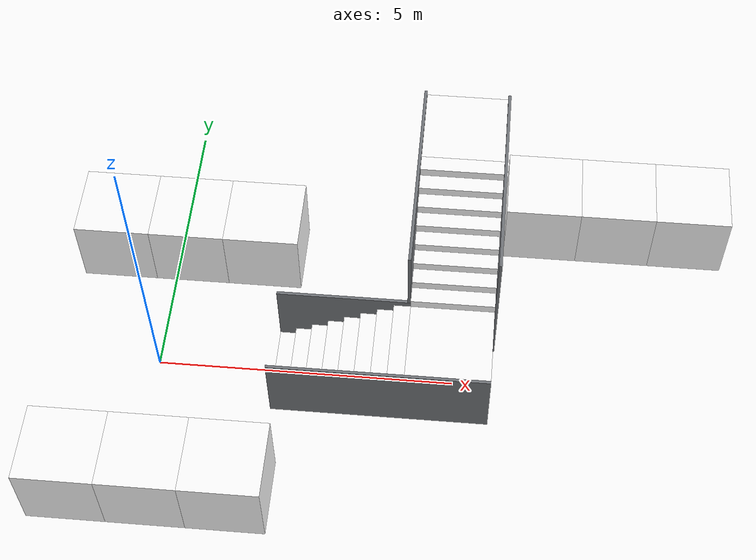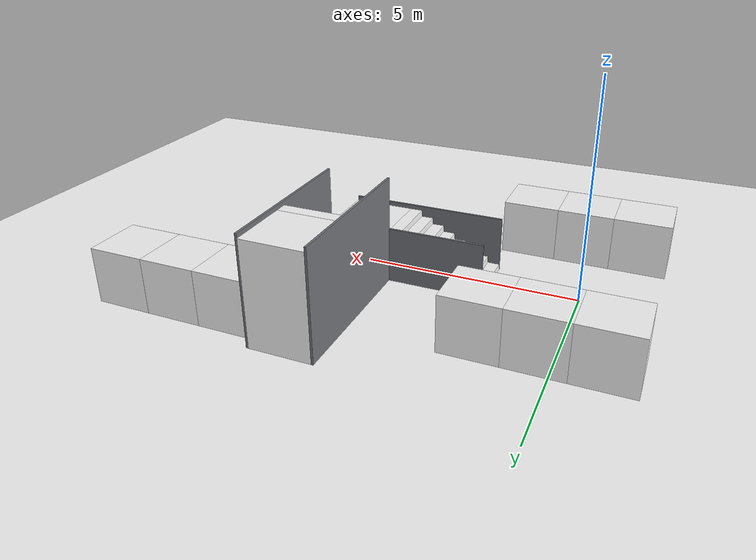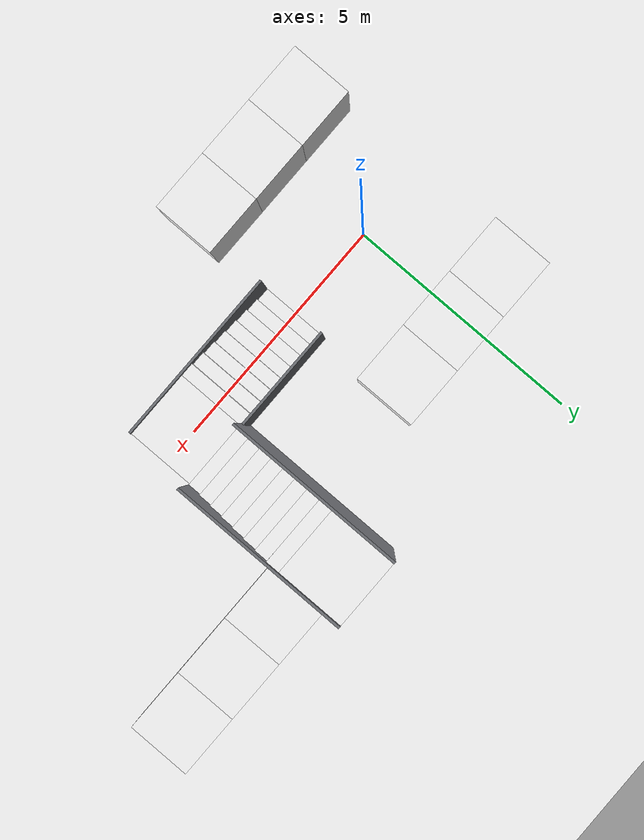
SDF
<?xml version="1.0" ?>
<sdf version="1.9">
  <world name="stairs">
    <physics name="1ms" type="ignored">
      <max_step_size>0.001</max_step_size>
      <real_time_factor>1</real_time_factor>
    </physics>
    <plugin filename="gz-sim-physics-system" name="gz::sim::systems::Physics"/>
    <plugin filename="gz-sim-user-commands-system" name="gz::sim::systems::UserCommands"/>
    <plugin filename="gz-sim-scene-broadcaster-system" name="gz::sim::systems::SceneBroadcaster"/>
    <plugin filename="gz-sim-imu-system" name="gz::sim::systems::Imu"/>
    <plugin filename="gz-sim-sensors-system" name="gz::sim::systems::Sensors">
      <render_engine>ogre2</render_engine>
    </plugin>

    <scene>
      <ambient>1 1 1 1</ambient>
      <background>0.3 0.7 0.9 1</background>
      <shadows>0</shadows>
      <grid>1</grid>
    </scene>

    <light name="sun" type="directional">
      <pose>0 0 10 0 0 0</pose>
      <cast_shadows>false</cast_shadows>
      <diffuse>1 1 1 1</diffuse>
      <specular>0.1 0.1 0.1 1</specular>
      <direction>-0.3 0.3 -1</direction>
    </light>

    <!-- visual-only ceiling: same rationale as yard (open sky kills stereo) -->
    <model name="sky_shell">
      <static>1</static>
      <link name="link">
        <visual name="ceiling">
          <pose>0 0 12 0 0 0</pose>
          <geometry><plane><normal>0 0 -1</normal><size>220 160</size></plane></geometry>
          <material>
            <ambient>0.6 0.6 0.6 1</ambient>
            <diffuse>0.6 0.6 0.6 1</diffuse>
          </material>
        </visual>
      </link>
    </model>

    <model name="ground_plane">
      <static>1</static>
      <pose>0 0 0.002 0 0 0</pose>
      <link name="link">
        <collision name="collision">
          <geometry><plane><normal>0 0 1</normal><size>100 100</size></plane></geometry>
          <surface>
            <friction><ode/></friction>
            <bounce/>
            <contact/>
          </surface>
        </collision>
        <visual name="floor_visual">
          <pose>0 0 -0.011 0 0 0</pose>
          <geometry><box><size>40 40 0.02</size></box></geometry>
          <material>
            <diffuse>1 1 1 1</diffuse>
            <specular>0.05 0.05 0.05 1</specular>
            <pbr>
              <metal>
                <albedo_map>model://textures/FLOOR_Albedo.png</albedo_map>
                <roughness>0.95</roughness>
                <metalness>0.0</metalness>
              </metal>
            </pbr>
          </material>
        </visual>
      </link>
    </model>

    <model name="stairs_switchback">
      <static>1</static>
      <pose>0 0 0 0 0 0</pose>
      <link name="link">
      <collision name="col_f1_s0">
        <pose>2.1400 0.0000 0.0750 0 0 0</pose>
        <geometry><box><size>0.2800 1.4000 0.1500</size></box></geometry>
        <surface><friction><ode><mu>1.2</mu><mu2>1.2</mu2></ode></friction></surface>
      </collision>
      <visual name="vis_f1_s0">
        <pose>2.1400 0.0000 0.0750 0 0 0</pose>
        <geometry><box><size>0.2800 1.4000 0.1500</size></box></geometry><material><diffuse>1 1 1 1</diffuse><specular>0.05 0.05 0.05 1</specular><pbr><metal><albedo_map>model://textures/STAIRS_Albedo.png</albedo_map><roughness>0.95</roughness><metalness>0.0</metalness></metal></pbr></material>
      </visual>
      <collision name="col_f1_s1">
        <pose>2.4200 0.0000 0.1500 0 0 0</pose>
        <geometry><box><size>0.2800 1.4000 0.3000</size></box></geometry>
        <surface><friction><ode><mu>1.2</mu><mu2>1.2</mu2></ode></friction></surface>
      </collision>
      <visual name="vis_f1_s1">
        <pose>2.4200 0.0000 0.1500 0 0 0</pose>
        <geometry><box><size>0.2800 1.4000 0.3000</size></box></geometry><material><diffuse>1 1 1 1</diffuse><specular>0.05 0.05 0.05 1</specular><pbr><metal><albedo_map>model://textures/STAIRS_Albedo.png</albedo_map><roughness>0.95</roughness><metalness>0.0</metalness></metal></pbr></material>
      </visual>
      <collision name="col_f1_s2">
        <pose>2.7000 0.0000 0.2250 0 0 0</pose>
        <geometry><box><size>0.2800 1.4000 0.4500</size></box></geometry>
        <surface><friction><ode><mu>1.2</mu><mu2>1.2</mu2></ode></friction></surface>
      </collision>
      <visual name="vis_f1_s2">
        <pose>2.7000 0.0000 0.2250 0 0 0</pose>
        <geometry><box><size>0.2800 1.4000 0.4500</size></box></geometry><material><diffuse>1 1 1 1</diffuse><specular>0.05 0.05 0.05 1</specular><pbr><metal><albedo_map>model://textures/STAIRS_Albedo.png</albedo_map><roughness>0.95</roughness><metalness>0.0</metalness></metal></pbr></material>
      </visual>
      <collision name="col_f1_s3">
        <pose>2.9800 0.0000 0.3000 0 0 0</pose>
        <geometry><box><size>0.2800 1.4000 0.6000</size></box></geometry>
        <surface><friction><ode><mu>1.2</mu><mu2>1.2</mu2></ode></friction></surface>
      </collision>
      <visual name="vis_f1_s3">
        <pose>2.9800 0.0000 0.3000 0 0 0</pose>
        <geometry><box><size>0.2800 1.4000 0.6000</size></box></geometry><material><diffuse>1 1 1 1</diffuse><specular>0.05 0.05 0.05 1</specular><pbr><metal><albedo_map>model://textures/STAIRS_Albedo.png</albedo_map><roughness>0.95</roughness><metalness>0.0</metalness></metal></pbr></material>
      </visual>
      <collision name="col_f1_s4">
        <pose>3.2600 0.0000 0.3750 0 0 0</pose>
        <geometry><box><size>0.2800 1.4000 0.7500</size></box></geometry>
        <surface><friction><ode><mu>1.2</mu><mu2>1.2</mu2></ode></friction></surface>
      </collision>
      <visual name="vis_f1_s4">
        <pose>3.2600 0.0000 0.3750 0 0 0</pose>
        <geometry><box><size>0.2800 1.4000 0.7500</size></box></geometry><material><diffuse>1 1 1 1</diffuse><specular>0.05 0.05 0.05 1</specular><pbr><metal><albedo_map>model://textures/STAIRS_Albedo.png</albedo_map><roughness>0.95</roughness><metalness>0.0</metalness></metal></pbr></material>
      </visual>
      <collision name="col_f1_s5">
        <pose>3.5400 0.0000 0.4500 0 0 0</pose>
        <geometry><box><size>0.2800 1.4000 0.9000</size></box></geometry>
        <surface><friction><ode><mu>1.2</mu><mu2>1.2</mu2></ode></friction></surface>
      </collision>
      <visual name="vis_f1_s5">
        <pose>3.5400 0.0000 0.4500 0 0 0</pose>
        <geometry><box><size>0.2800 1.4000 0.9000</size></box></geometry><material><diffuse>1 1 1 1</diffuse><specular>0.05 0.05 0.05 1</specular><pbr><metal><albedo_map>model://textures/STAIRS_Albedo.png</albedo_map><roughness>0.95</roughness><metalness>0.0</metalness></metal></pbr></material>
      </visual>
      <collision name="col_f1_s6">
        <pose>3.8200 0.0000 0.5250 0 0 0</pose>
        <geometry><box><size>0.2800 1.4000 1.0500</size></box></geometry>
        <surface><friction><ode><mu>1.2</mu><mu2>1.2</mu2></ode></friction></surface>
      </collision>
      <visual name="vis_f1_s6">
        <pose>3.8200 0.0000 0.5250 0 0 0</pose>
        <geometry><box><size>0.2800 1.4000 1.0500</size></box></geometry><material><diffuse>1 1 1 1</diffuse><specular>0.05 0.05 0.05 1</specular><pbr><metal><albedo_map>model://textures/STAIRS_Albedo.png</albedo_map><roughness>0.95</roughness><metalness>0.0</metalness></metal></pbr></material>
      </visual>
      <collision name="col_f1_s7">
        <pose>4.1000 0.0000 0.6000 0 0 0</pose>
        <geometry><box><size>0.2800 1.4000 1.2000</size></box></geometry>
        <surface><friction><ode><mu>1.2</mu><mu2>1.2</mu2></ode></friction></surface>
      </collision>
      <visual name="vis_f1_s7">
        <pose>4.1000 0.0000 0.6000 0 0 0</pose>
        <geometry><box><size>0.2800 1.4000 1.2000</size></box></geometry><material><diffuse>1 1 1 1</diffuse><specular>0.05 0.05 0.05 1</specular><pbr><metal><albedo_map>model://textures/STAIRS_Albedo.png</albedo_map><roughness>0.95</roughness><metalness>0.0</metalness></metal></pbr></material>
      </visual>
      <collision name="col_plat1">
        <pose>4.9400 0.0000 0.6000 0 0 0</pose>
        <geometry><box><size>1.4000 1.4000 1.2000</size></box></geometry>
        <surface><friction><ode><mu>1.2</mu><mu2>1.2</mu2></ode></friction></surface>
      </collision>
      <visual name="vis_plat1">
        <pose>4.9400 0.0000 0.6000 0 0 0</pose>
        <geometry><box><size>1.4000 1.4000 1.2000</size></box></geometry><material><diffuse>1 1 1 1</diffuse><specular>0.05 0.05 0.05 1</specular><pbr><metal><albedo_map>model://textures/STAIRS_Albedo.png</albedo_map><roughness>0.95</roughness><metalness>0.0</metalness></metal></pbr></material>
      </visual>
      <collision name="col_f2_s0">
        <pose>4.9400 0.8400 0.6750 0 0 0</pose>
        <geometry><box><size>1.4000 0.2800 1.3500</size></box></geometry>
        <surface><friction><ode><mu>1.2</mu><mu2>1.2</mu2></ode></friction></surface>
      </collision>
      <visual name="vis_f2_s0">
        <pose>4.9400 0.8400 0.6750 0 0 0</pose>
        <geometry><box><size>1.4000 0.2800 1.3500</size></box></geometry><material><diffuse>1 1 1 1</diffuse><specular>0.05 0.05 0.05 1</specular><pbr><metal><albedo_map>model://textures/STAIRS_Albedo.png</albedo_map><roughness>0.95</roughness><metalness>0.0</metalness></metal></pbr></material>
      </visual>
      <collision name="col_f2_s1">
        <pose>4.9400 1.1200 0.7500 0 0 0</pose>
        <geometry><box><size>1.4000 0.2800 1.5000</size></box></geometry>
        <surface><friction><ode><mu>1.2</mu><mu2>1.2</mu2></ode></friction></surface>
      </collision>
      <visual name="vis_f2_s1">
        <pose>4.9400 1.1200 0.7500 0 0 0</pose>
        <geometry><box><size>1.4000 0.2800 1.5000</size></box></geometry><material><diffuse>1 1 1 1</diffuse><specular>0.05 0.05 0.05 1</specular><pbr><metal><albedo_map>model://textures/STAIRS_Albedo.png</albedo_map><roughness>0.95</roughness><metalness>0.0</metalness></metal></pbr></material>
      </visual>
      <collision name="col_f2_s2">
        <pose>4.9400 1.4000 0.8250 0 0 0</pose>
        <geometry><box><size>1.4000 0.2800 1.6500</size></box></geometry>
        <surface><friction><ode><mu>1.2</mu><mu2>1.2</mu2></ode></friction></surface>
      </collision>
      <visual name="vis_f2_s2">
        <pose>4.9400 1.4000 0.8250 0 0 0</pose>
        <geometry><box><size>1.4000 0.2800 1.6500</size></box></geometry><material><diffuse>1 1 1 1</diffuse><specular>0.05 0.05 0.05 1</specular><pbr><metal><albedo_map>model://textures/STAIRS_Albedo.png</albedo_map><roughness>0.95</roughness><metalness>0.0</metalness></metal></pbr></material>
      </visual>
      <collision name="col_f2_s3">
        <pose>4.9400 1.6800 0.9000 0 0 0</pose>
        <geometry><box><size>1.4000 0.2800 1.8000</size></box></geometry>
        <surface><friction><ode><mu>1.2</mu><mu2>1.2</mu2></ode></friction></surface>
      </collision>
      <visual name="vis_f2_s3">
        <pose>4.9400 1.6800 0.9000 0 0 0</pose>
        <geometry><box><size>1.4000 0.2800 1.8000</size></box></geometry><material><diffuse>1 1 1 1</diffuse><specular>0.05 0.05 0.05 1</specular><pbr><metal><albedo_map>model://textures/STAIRS_Albedo.png</albedo_map><roughness>0.95</roughness><metalness>0.0</metalness></metal></pbr></material>
      </visual>
      <collision name="col_f2_s4">
        <pose>4.9400 1.9600 0.9750 0 0 0</pose>
        <geometry><box><size>1.4000 0.2800 1.9500</size></box></geometry>
        <surface><friction><ode><mu>1.2</mu><mu2>1.2</mu2></ode></friction></surface>
      </collision>
      <visual name="vis_f2_s4">
        <pose>4.9400 1.9600 0.9750 0 0 0</pose>
        <geometry><box><size>1.4000 0.2800 1.9500</size></box></geometry><material><diffuse>1 1 1 1</diffuse><specular>0.05 0.05 0.05 1</specular><pbr><metal><albedo_map>model://textures/STAIRS_Albedo.png</albedo_map><roughness>0.95</roughness><metalness>0.0</metalness></metal></pbr></material>
      </visual>
      <collision name="col_f2_s5">
        <pose>4.9400 2.2400 1.0500 0 0 0</pose>
        <geometry><box><size>1.4000 0.2800 2.1000</size></box></geometry>
        <surface><friction><ode><mu>1.2</mu><mu2>1.2</mu2></ode></friction></surface>
      </collision>
      <visual name="vis_f2_s5">
        <pose>4.9400 2.2400 1.0500 0 0 0</pose>
        <geometry><box><size>1.4000 0.2800 2.1000</size></box></geometry><material><diffuse>1 1 1 1</diffuse><specular>0.05 0.05 0.05 1</specular><pbr><metal><albedo_map>model://textures/STAIRS_Albedo.png</albedo_map><roughness>0.95</roughness><metalness>0.0</metalness></metal></pbr></material>
      </visual>
      <collision name="col_f2_s6">
        <pose>4.9400 2.5200 1.1250 0 0 0</pose>
        <geometry><box><size>1.4000 0.2800 2.2500</size></box></geometry>
        <surface><friction><ode><mu>1.2</mu><mu2>1.2</mu2></ode></friction></surface>
      </collision>
      <visual name="vis_f2_s6">
        <pose>4.9400 2.5200 1.1250 0 0 0</pose>
        <geometry><box><size>1.4000 0.2800 2.2500</size></box></geometry><material><diffuse>1 1 1 1</diffuse><specular>0.05 0.05 0.05 1</specular><pbr><metal><albedo_map>model://textures/STAIRS_Albedo.png</albedo_map><roughness>0.95</roughness><metalness>0.0</metalness></metal></pbr></material>
      </visual>
      <collision name="col_f2_s7">
        <pose>4.9400 2.8000 1.2000 0 0 0</pose>
        <geometry><box><size>1.4000 0.2800 2.4000</size></box></geometry>
        <surface><friction><ode><mu>1.2</mu><mu2>1.2</mu2></ode></friction></surface>
      </collision>
      <visual name="vis_f2_s7">
        <pose>4.9400 2.8000 1.2000 0 0 0</pose>
        <geometry><box><size>1.4000 0.2800 2.4000</size></box></geometry><material><diffuse>1 1 1 1</diffuse><specular>0.05 0.05 0.05 1</specular><pbr><metal><albedo_map>model://textures/STAIRS_Albedo.png</albedo_map><roughness>0.95</roughness><metalness>0.0</metalness></metal></pbr></material>
      </visual>
      <collision name="col_plat2">
        <pose>4.9400 3.6400 1.2000 0 0 0</pose>
        <geometry><box><size>1.4000 1.4000 2.4000</size></box></geometry>
        <surface><friction><ode><mu>1.2</mu><mu2>1.2</mu2></ode></friction></surface>
      </collision>
      <visual name="vis_plat2">
        <pose>4.9400 3.6400 1.2000 0 0 0</pose>
        <geometry><box><size>1.4000 1.4000 2.4000</size></box></geometry><material><diffuse>1 1 1 1</diffuse><specular>0.05 0.05 0.05 1</specular><pbr><metal><albedo_map>model://textures/STAIRS_Albedo.png</albedo_map><roughness>0.95</roughness><metalness>0.0</metalness></metal></pbr></material>
      </visual>
      <collision name="col_rail_f1_w">
        <pose>3.8200 -0.7250 0.6500 0 0 0</pose>
        <geometry><box><size>3.6400 0.0500 1.3000</size></box></geometry>
        <surface><friction><ode><mu>1.2</mu><mu2>1.2</mu2></ode></friction></surface>
      </collision>
      <visual name="vis_rail_f1_w">
        <pose>3.8200 -0.7250 0.6500 0 0 0</pose>
        <geometry><box><size>3.6400 0.0500 1.3000</size></box></geometry><material><ambient>0.45 0.46 0.48 1</ambient><diffuse>0.45 0.46 0.48 1</diffuse></material>
      </visual>
      <collision name="col_rail_f1_e">
        <pose>3.1200 0.7250 0.6500 0 0 0</pose>
        <geometry><box><size>2.2400 0.0500 1.3000</size></box></geometry>
        <surface><friction><ode><mu>1.2</mu><mu2>1.2</mu2></ode></friction></surface>
      </collision>
      <visual name="vis_rail_f1_e">
        <pose>3.1200 0.7250 0.6500 0 0 0</pose>
        <geometry><box><size>2.2400 0.0500 1.3000</size></box></geometry><material><ambient>0.45 0.46 0.48 1</ambient><diffuse>0.45 0.46 0.48 1</diffuse></material>
      </visual>
      <collision name="col_rail_f2_w">
        <pose>4.2150 2.5200 1.2500 0 0 0</pose>
        <geometry><box><size>0.0500 3.6400 2.5000</size></box></geometry>
        <surface><friction><ode><mu>1.2</mu><mu2>1.2</mu2></ode></friction></surface>
      </collision>
      <visual name="vis_rail_f2_w">
        <pose>4.2150 2.5200 1.2500 0 0 0</pose>
        <geometry><box><size>0.0500 3.6400 2.5000</size></box></geometry><material><ambient>0.45 0.46 0.48 1</ambient><diffuse>0.45 0.46 0.48 1</diffuse></material>
      </visual>
      <collision name="col_rail_f2_e">
        <pose>5.6650 2.5200 1.2500 0 0 0</pose>
        <geometry><box><size>0.0500 3.6400 2.5000</size></box></geometry>
        <surface><friction><ode><mu>1.2</mu><mu2>1.2</mu2></ode></friction></surface>
      </collision>
      <visual name="vis_rail_f2_e">
        <pose>5.6650 2.5200 1.2500 0 0 0</pose>
        <geometry><box><size>0.0500 3.6400 2.5000</size></box></geometry><material><ambient>0.45 0.46 0.48 1</ambient><diffuse>0.45 0.46 0.48 1</diffuse></material>
      </visual>
      </link>
    </model>

    <model name="anchor_walls">
      <static>1</static>
      <pose>0 0 0 0 0 0</pose>
      <link name="link">
      <collision name="col_crate00">
        <pose>-1.0000 -2.4000 0.6440 0 0 0</pose>
        <geometry><box><size>1.2880 1.2880 1.2880</size></box></geometry>
        <surface><friction><ode><mu>1.2</mu><mu2>1.2</mu2></ode></friction></surface>
      </collision>
      <visual name="vis_crate00">
        <pose>-1.0000 -2.4000 0.6440 0 0 0</pose>
        <geometry><box><size>1.2880 1.2880 1.2880</size></box></geometry><material><diffuse>1 1 1 1</diffuse><specular>0.05 0.05 0.05 1</specular><pbr><metal><albedo_map>model://textures/crate_0.png</albedo_map><roughness>0.95</roughness><metalness>0.0</metalness></metal></pbr></material>
      </visual>
      <collision name="col_crate01">
        <pose>0.2880 -2.4000 0.6440 0 0 0</pose>
        <geometry><box><size>1.2880 1.2880 1.2880</size></box></geometry>
        <surface><friction><ode><mu>1.2</mu><mu2>1.2</mu2></ode></friction></surface>
      </collision>
      <visual name="vis_crate01">
        <pose>0.2880 -2.4000 0.6440 0 0 0</pose>
        <geometry><box><size>1.2880 1.2880 1.2880</size></box></geometry><material><diffuse>1 1 1 1</diffuse><specular>0.05 0.05 0.05 1</specular><pbr><metal><albedo_map>model://textures/crate_1.png</albedo_map><roughness>0.95</roughness><metalness>0.0</metalness></metal></pbr></material>
      </visual>
      <collision name="col_crate02">
        <pose>1.5760 -2.4000 0.6440 0 0 0</pose>
        <geometry><box><size>1.2880 1.2880 1.2880</size></box></geometry>
        <surface><friction><ode><mu>1.2</mu><mu2>1.2</mu2></ode></friction></surface>
      </collision>
      <visual name="vis_crate02">
        <pose>1.5760 -2.4000 0.6440 0 0 0</pose>
        <geometry><box><size>1.2880 1.2880 1.2880</size></box></geometry><material><diffuse>1 1 1 1</diffuse><specular>0.05 0.05 0.05 1</specular><pbr><metal><albedo_map>model://textures/crate_2.png</albedo_map><roughness>0.95</roughness><metalness>0.0</metalness></metal></pbr></material>
      </visual>
      <collision name="col_crate03">
        <pose>-1.0000 2.4000 0.6440 0 0 0</pose>
        <geometry><box><size>1.2880 1.2880 1.2880</size></box></geometry>
        <surface><friction><ode><mu>1.2</mu><mu2>1.2</mu2></ode></friction></surface>
      </collision>
      <visual name="vis_crate03">
        <pose>-1.0000 2.4000 0.6440 0 0 0</pose>
        <geometry><box><size>1.2880 1.2880 1.2880</size></box></geometry><material><diffuse>1 1 1 1</diffuse><specular>0.05 0.05 0.05 1</specular><pbr><metal><albedo_map>model://textures/crate_3.png</albedo_map><roughness>0.95</roughness><metalness>0.0</metalness></metal></pbr></material>
      </visual>
      <collision name="col_crate04">
        <pose>0.2880 2.4000 0.6440 0 0 0</pose>
        <geometry><box><size>1.2880 1.2880 1.2880</size></box></geometry>
        <surface><friction><ode><mu>1.2</mu><mu2>1.2</mu2></ode></friction></surface>
      </collision>
      <visual name="vis_crate04">
        <pose>0.2880 2.4000 0.6440 0 0 0</pose>
        <geometry><box><size>1.2880 1.2880 1.2880</size></box></geometry><material><diffuse>1 1 1 1</diffuse><specular>0.05 0.05 0.05 1</specular><pbr><metal><albedo_map>model://textures/crate_4.png</albedo_map><roughness>0.95</roughness><metalness>0.0</metalness></metal></pbr></material>
      </visual>
      <collision name="col_crate05">
        <pose>1.5760 2.4000 0.6440 0 0 0</pose>
        <geometry><box><size>1.2880 1.2880 1.2880</size></box></geometry>
        <surface><friction><ode><mu>1.2</mu><mu2>1.2</mu2></ode></friction></surface>
      </collision>
      <visual name="vis_crate05">
        <pose>1.5760 2.4000 0.6440 0 0 0</pose>
        <geometry><box><size>1.2880 1.2880 1.2880</size></box></geometry><material><diffuse>1 1 1 1</diffuse><specular>0.05 0.05 0.05 1</specular><pbr><metal><albedo_map>model://textures/crate_5.png</albedo_map><roughness>0.95</roughness><metalness>0.0</metalness></metal></pbr></material>
      </visual>
      <collision name="col_crate06">
        <pose>6.4000 3.4000 0.6440 0 0 0</pose>
        <geometry><box><size>1.2880 1.2880 1.2880</size></box></geometry>
        <surface><friction><ode><mu>1.2</mu><mu2>1.2</mu2></ode></friction></surface>
      </collision>
      <visual name="vis_crate06">
        <pose>6.4000 3.4000 0.6440 0 0 0</pose>
        <geometry><box><size>1.2880 1.2880 1.2880</size></box></geometry><material><diffuse>1 1 1 1</diffuse><specular>0.05 0.05 0.05 1</specular><pbr><metal><albedo_map>model://textures/crate_6.png</albedo_map><roughness>0.95</roughness><metalness>0.0</metalness></metal></pbr></material>
      </visual>
      <collision name="col_crate07">
        <pose>7.6880 3.4000 0.6440 0 0 0</pose>
        <geometry><box><size>1.2880 1.2880 1.2880</size></box></geometry>
        <surface><friction><ode><mu>1.2</mu><mu2>1.2</mu2></ode></friction></surface>
      </collision>
      <visual name="vis_crate07">
        <pose>7.6880 3.4000 0.6440 0 0 0</pose>
        <geometry><box><size>1.2880 1.2880 1.2880</size></box></geometry><material><diffuse>1 1 1 1</diffuse><specular>0.05 0.05 0.05 1</specular><pbr><metal><albedo_map>model://textures/crate_7.png</albedo_map><roughness>0.95</roughness><metalness>0.0</metalness></metal></pbr></material>
      </visual>
      <collision name="col_crate08">
        <pose>8.9760 3.4000 0.6440 0 0 0</pose>
        <geometry><box><size>1.2880 1.2880 1.2880</size></box></geometry>
        <surface><friction><ode><mu>1.2</mu><mu2>1.2</mu2></ode></friction></surface>
      </collision>
      <visual name="vis_crate08">
        <pose>8.9760 3.4000 0.6440 0 0 0</pose>
        <geometry><box><size>1.2880 1.2880 1.2880</size></box></geometry><material><diffuse>1 1 1 1</diffuse><specular>0.05 0.05 0.05 1</specular><pbr><metal><albedo_map>model://textures/crate_0.png</albedo_map><roughness>0.95</roughness><metalness>0.0</metalness></metal></pbr></material>
      </visual>
      </link>
    </model>
  </world>
</sdf>
